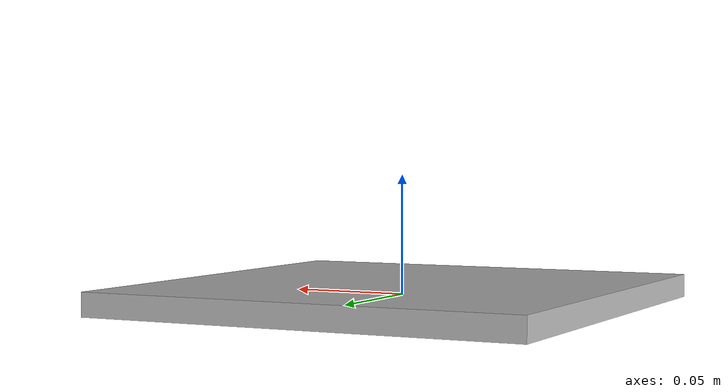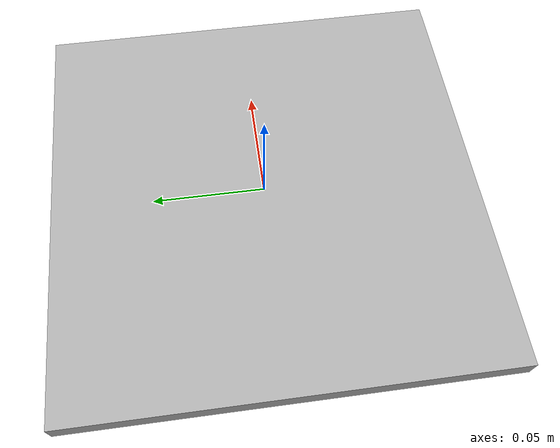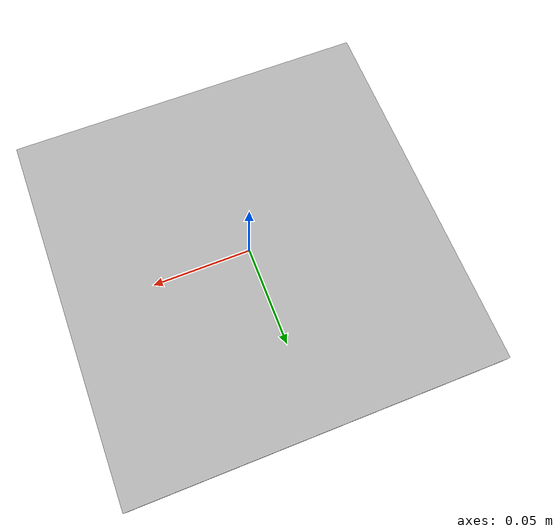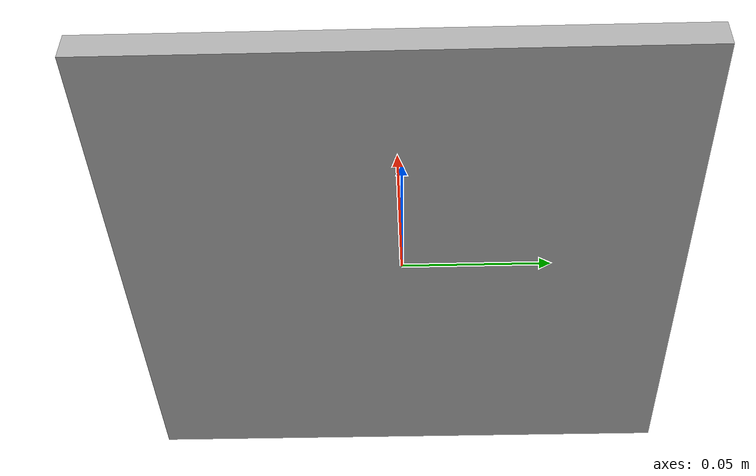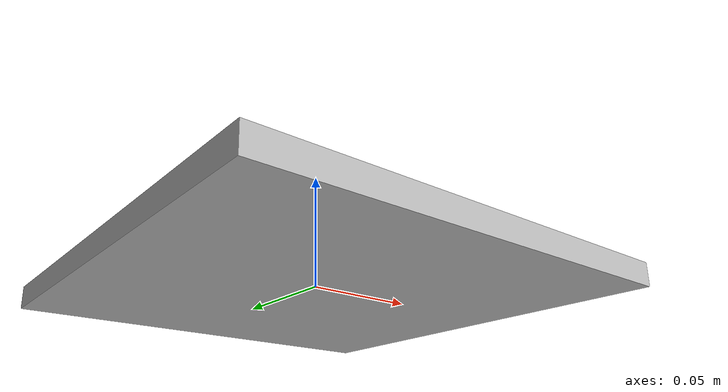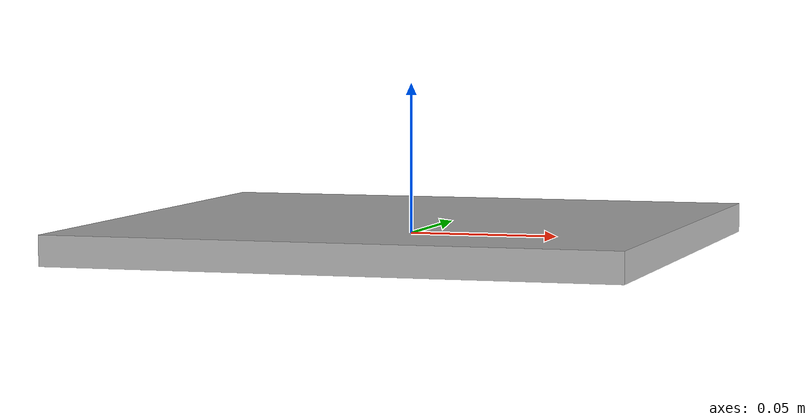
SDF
<?xml version='1.0'?>
<sdf version='1.6'>
  <model name='Apriltag16_5_00000'>
    <link name='main'>
    <pose frame=''>0 0 0 0 0 0</pose>
      <visual name='main_Visual'>
        <geometry>
          <box>
          <size>0.1875 0.1875 0.01</size>
          </box>
        </geometry>
           <material>
          <script>
            <uri>model://Apriltag16_05_00001/materials/scripts</uri>
            <uri>model://Apriltag16_05_00001/materials/textures</uri>
            <name>Apriltag16_05_00001</name>
          </script>
        </material>
      </visual>
     </link>
    <static>1</static>
  </model>
</sdf>
